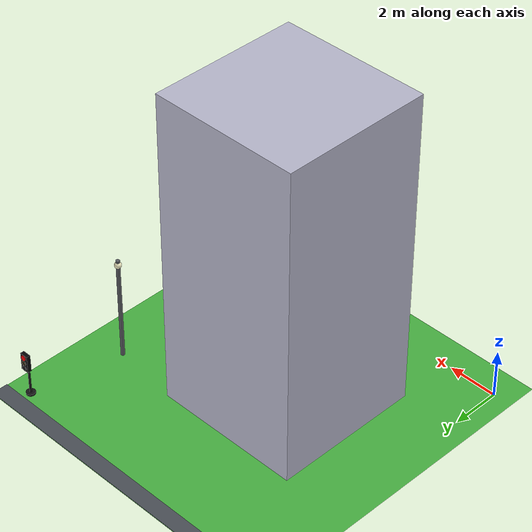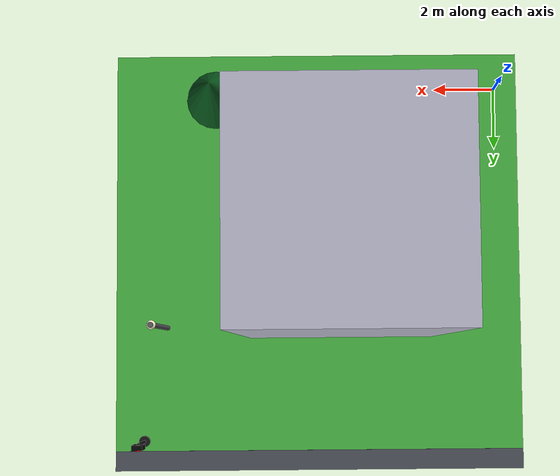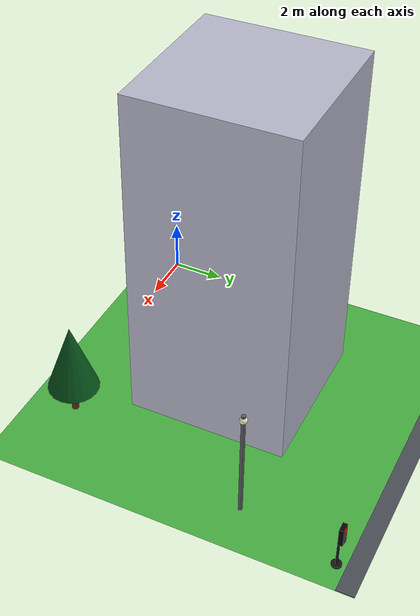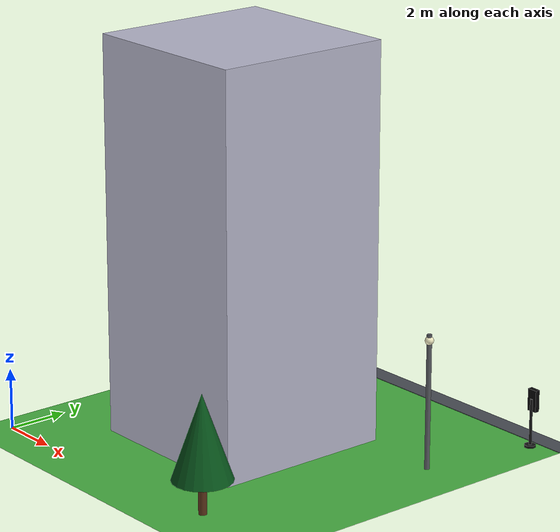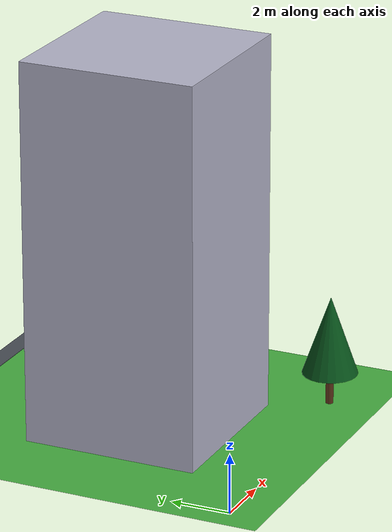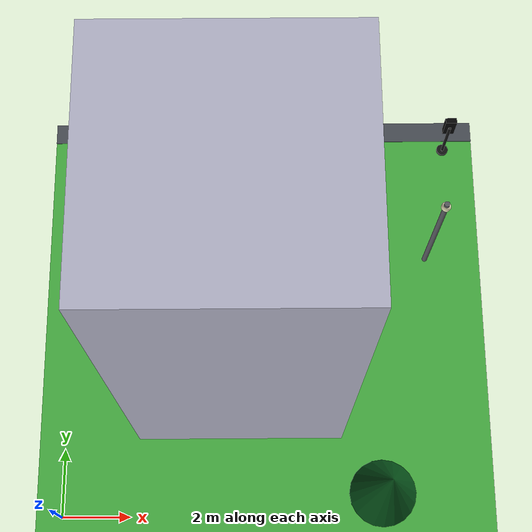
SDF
<sdf version="1.10">
 <world name="city_second">
  <model name="ground_plane">
   <static>true</static>
   <link name="link">
    <collision name="collision">
     <geometry><plane><normal>0 0 1</normal><size>300 300</size></plane></geometry>
    </collision>
    <visual name="visual">
     <geometry><plane><normal>0 0 1</normal><size>300 300</size></plane></geometry>
     <material>
      <ambient>0.280000001 0.689999998 0.25999999 1</ambient>
      <diffuse>0.280000001 0.689999998 0.25999999 1</diffuse>
      <specular>0.0299999993 0.0299999993 0.0299999993 1</specular>
     </material>
    </visual>
    <inertial>
     <mass>1</mass>
     <inertia><ixx>1</ixx><ixy>0</ixy><ixz>0</ixz><iyy>1</iyy><iyz>0</iyz><izz>1</izz></inertia>
    </inertial>
   </link>
  </model>
  <model name="road_h_2">
   <static>true</static>
   <pose>0 16 0.01 0 0 0</pose>
   <link name="link">
    <collision name="collision"><geometry><box><size>84 8 0.02</size></box></geometry></collision>
    <visual name="visual">
     <geometry><box><size>84 8 0.02</size></box></geometry>
     <material>
      <ambient>0.289999992 0.310000002 0.340000004 1</ambient>
      <diffuse>0.289999992 0.310000002 0.340000004 1</diffuse>
      <specular>0.0299999993 0.0299999993 0.0299999993 1</specular>
     </material>
    </visual>
    <inertial>
     <mass>1</mass>
     <inertia><ixx>1</ixx><ixy>0</ixy><ixz>0</ixz><iyy>1</iyy><iyz>0</iyz><izz>1</izz></inertia>
    </inertial>
   </link>
  </model>
  <model name="house_2_2">
   <static>true</static>
   <pose>5.2000000000000002 5.2999999999999998 6.5 0 0 0</pose>
   <link name="link">
    <collision name="collision"><geometry><box><size>6 6 13</size></box></geometry></collision>
    <visual name="visual">
     <geometry><box><size>6 6 13</size></box></geometry>
     <material>
      <ambient>0.720000029 0.720000029 0.800000012 1</ambient>
      <diffuse>0.720000029 0.720000029 0.800000012 1</diffuse>
      <specular>0.0299999993 0.0299999993 0.0299999993 1</specular>
     </material>
    </visual>
    <inertial>
     <mass>1</mass>
     <inertia><ixx>1</ixx><ixy>0</ixy><ixz>0</ixz><iyy>1</iyy><iyz>0</iyz><izz>1</izz></inertia>
    </inertial>
   </link>
  </model>
  <model name="lamp_1_2_10">
   <static>true</static>
   <pose>10.9572 7.9459400000000002 2.2000000000000002 0 0 0</pose>
   <link name="link">
    <collision name="collision">
     <geometry>
      <cylinder><radius>0.080000000000000002</radius><length>4.4000000000000004</length></cylinder>
     </geometry>
    </collision>
    <visual name="pole">
     <geometry>
      <cylinder><radius>0.080000000000000002</radius><length>4.4000000000000004</length></cylinder>
     </geometry>
     <material>
      <ambient>0.349999994 0.360000014 0.379999995 1</ambient>
      <diffuse>0.349999994 0.360000014 0.379999995 1</diffuse>
      <specular>0.0299999993 0.0299999993 0.0299999993 1</specular>
     </material>
    </visual>
    <visual name="lamp_head">
     <pose>0 0 2 0 0 0</pose>
     <geometry><sphere><radius>0.14000000000000001</radius></sphere></geometry>
     <material>
      <ambient>0.959999979 0.939999998 0.779999971 1</ambient>
      <diffuse>0.959999979 0.939999998 0.779999971 1</diffuse>
      <specular>0.0299999993 0.0299999993 0.0299999993 1</specular>
     </material>
    </visual>
    <inertial>
     <mass>1</mass>
     <inertia><ixx>1</ixx><ixy>0</ixy><ixz>0</ixz><iyy>1</iyy><iyz>0</iyz><izz>1</izz></inertia>
    </inertial>
   </link>
  </model>
  <model name="Pine Tree_12">
   <static>true</static>
   <pose>9.2489500000000007 0.51215299999999997 0 0 0 0</pose>
   <link name="link">
    <collision name="footprint">
     <pose>0 0 0.050000000000000003 0 0 0</pose>
     <geometry>
      <cylinder><radius>0.65000000000000002</radius><length>0.10000000000000001</length></cylinder>
     </geometry>
    </collision>
    <visual name="trunk">
     <pose>0 0 0.90000000000000002 0 0 0</pose>
     <geometry><cylinder><radius>0.13</radius><length>1.8</length></cylinder></geometry>
     <material>
      <ambient>0.360000014 0.200000003 0.100000001 1</ambient>
      <diffuse>0.360000014 0.200000003 0.100000001 1</diffuse>
      <specular>0.119999997 0.119999997 0.119999997 1</specular>
      <emissive>0 0 0 1</emissive>
     </material>
    </visual>
    <visual name="crown">
     <pose>0 0 2.4500000000000002 0 0 0</pose>
     <geometry><cone><radius>0.94999999999999996</radius><length>2.7000000000000002</length></cone></geometry>
     <material>
      <ambient>0.0299999993 0.340000004 0.109999999 1</ambient>
      <diffuse>0.0299999993 0.340000004 0.109999999 1</diffuse>
      <specular>0.119999997 0.119999997 0.119999997 1</specular>
      <emissive>0 0 0 1</emissive>
     </material>
    </visual>
    <inertial>
     <mass>1</mass>
     <inertia><ixx>1</ixx><ixy>0</ixy><ixz>0</ixz><iyy>1</iyy><iyz>0</iyz><izz>1</izz></inertia>
    </inertial>
   </link>
  </model>
  <model name="simple_traffic_light_red_north_2">
   <static>true</static>
   <pose>11.708740095335536 11.674688214312628 0 0 0 0</pose>
   <link name="base">
    <pose>0 0 0.040000000000000001 0 0 0</pose>
    <collision name="collision">
     <geometry>
      <cylinder><radius>0.17999999999999999</radius><length>0.080000000000000002</length></cylinder>
     </geometry>
    </collision>
    <visual name="visual">
     <geometry>
      <cylinder><radius>0.17999999999999999</radius><length>0.080000000000000002</length></cylinder>
     </geometry>
     <material>
      <ambient>0.0799999982 0.0799999982 0.0799999982 1</ambient>
      <diffuse>0.0799999982 0.0799999982 0.0799999982 1</diffuse>
      <specular>0.150000006 0.150000006 0.150000006 1</specular>
      <emissive>0 0 0 1</emissive>
     </material>
    </visual>
    <inertial>
     <mass>1</mass>
     <inertia><ixx>1</ixx><ixy>0</ixy><ixz>0</ixz><iyy>1</iyy><iyz>0</iyz><izz>1</izz></inertia>
    </inertial>
   </link>
   <link name="pole">
    <pose>0 0 0.80000000000000004 0 0 0</pose>
    <collision name="collision">
     <geometry>
      <cylinder><radius>0.044999999999999998</radius><length>1.6000000000000001</length></cylinder>
     </geometry>
    </collision>
    <visual name="visual">
     <geometry>
      <cylinder><radius>0.044999999999999998</radius><length>1.6000000000000001</length></cylinder>
     </geometry>
     <material>
      <ambient>0.0799999982 0.0799999982 0.0799999982 1</ambient>
      <diffuse>0.0799999982 0.0799999982 0.0799999982 1</diffuse>
      <specular>0.150000006 0.150000006 0.150000006 1</specular>
      <emissive>0 0 0 1</emissive>
     </material>
    </visual>
    <inertial>
     <mass>1</mass>
     <inertia><ixx>1</ixx><ixy>0</ixy><ixz>0</ixz><iyy>1</iyy><iyz>0</iyz><izz>1</izz></inertia>
    </inertial>
   </link>
   <link name="signal_box">
    <pose>0 0.090000000000003411 1.55 0 0 0</pose>
    <collision name="collision">
     <geometry><box><size>0.34000000000000002 0.16 0.71999999999999997</size></box></geometry>
    </collision>
    <visual name="visual">
     <geometry><box><size>0.34000000000000002 0.16 0.71999999999999997</size></box></geometry>
     <material>
      <ambient>0.0199999996 0.0199999996 0.0199999996 1</ambient>
      <diffuse>0.0199999996 0.0199999996 0.0199999996 1</diffuse>
      <specular>0.150000006 0.150000006 0.150000006 1</specular>
      <emissive>0 0 0 1</emissive>
     </material>
    </visual>
    <inertial>
     <mass>1</mass>
     <inertia><ixx>1</ixx><ixy>0</ixy><ixz>0</ixz><iyy>1</iyy><iyz>0</iyz><izz>1</izz></inertia>
    </inertial>
   </link>
   <link name="red_lens">
    <pose>0 0.18099999999999739 1.78 1.5707963268000003 0 0</pose>
    <collision name="collision">
     <geometry><cylinder><radius>0.105</radius><length>0.035000000000000003</length></cylinder></geometry>
    </collision>
    <visual name="visual">
     <geometry><cylinder><radius>0.105</radius><length>0.035000000000000003</length></cylinder></geometry>
     <material>
      <ambient>1 0.0199999996 0.0199999996 1</ambient>
      <diffuse>1 0.0199999996 0.0199999996 1</diffuse>
      <specular>0.150000006 0.150000006 0.150000006 1</specular>
      <emissive>1 0.0199999996 0.0199999996 1</emissive>
     </material>
    </visual>
    <inertial>
     <mass>1</mass>
     <inertia><ixx>1</ixx><ixy>0</ixy><ixz>0</ixz><iyy>1</iyy><iyz>0</iyz><izz>1</izz></inertia>
    </inertial>
   </link>
   <link name="yellow_lens">
    <pose>0 0.18200000000000216 1.55 1.5707963268000003 0 0</pose>
    <collision name="collision">
     <geometry>
      <cylinder><radius>0.095000000000000001</radius><length>0.035000000000000003</length></cylinder>
     </geometry>
    </collision>
    <visual name="visual">
     <geometry>
      <cylinder><radius>0.095000000000000001</radius><length>0.035000000000000003</length></cylinder>
     </geometry>
     <material>
      <ambient>0.119999997 0.100000001 0.0199999996 1</ambient>
      <diffuse>0.119999997 0.100000001 0.0199999996 1</diffuse>
      <specular>0.150000006 0.150000006 0.150000006 1</specular>
      <emissive>0 0 0 1</emissive>
     </material>
    </visual>
    <inertial>
     <mass>1</mass>
     <inertia><ixx>1</ixx><ixy>0</ixy><ixz>0</ixz><iyy>1</iyy><iyz>0</iyz><izz>1</izz></inertia>
    </inertial>
   </link>
   <link name="green_lens">
    <pose>0 0.18299999999999983 1.3200000000000001 1.5707963268000003 0 0</pose>
    <collision name="collision">
     <geometry><cylinder><radius>0.105</radius><length>0.035000000000000003</length></cylinder></geometry>
    </collision>
    <visual name="visual">
     <geometry><cylinder><radius>0.105</radius><length>0.035000000000000003</length></cylinder></geometry>
     <material>
      <ambient>0.0799999982 0.0799999982 0.0799999982 1</ambient>
      <diffuse>0.0799999982 0.0799999982 0.0799999982 1</diffuse>
      <specular>0.150000006 0.150000006 0.150000006 1</specular>
      <emissive>0 0 0 1</emissive>
     </material>
    </visual>
    <inertial>
     <mass>1</mass>
     <inertia><ixx>1</ixx><ixy>0</ixy><ixz>0</ixz><iyy>1</iyy><iyz>0</iyz><izz>1</izz></inertia>
    </inertial>
   </link>
  </model>
 </world>
</sdf>
